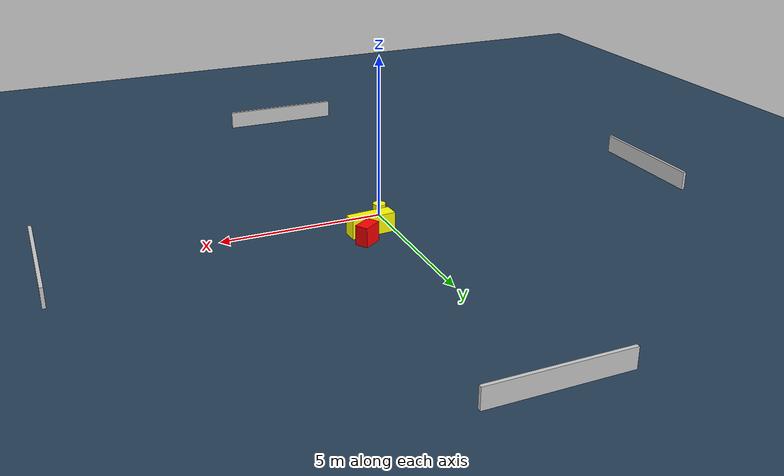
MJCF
<?xml version="1.0" ?>
<mujoco model="generated_environment">
  <option timestep="0.01" integrator="RK4" cone="elliptic"/>
  <default>
    <geom density="1"/>
  </default>
  <asset>
    <texture builtin="gradient" height="3072" name="skybox" rgb1="0.3 0.5 0.7" rgb2="0 0 0" type="skybox" width="512"/>
    <texture builtin="checker" height="300" name="groundplane" rgb1="0.2 0.3 0.4" rgb2="0.1 0.2 0.3" type="2d" width="300"/>
    <material name="groundplane" reflectance="0.2" texrepeat="5 5" texture="groundplane"/>
  </asset>
  <worldbody>
    <light dir="0 0 -1" directional="true" pos="0 0 1.5"/>
    <geom condim="3" friction="0.5 0.005 0.001" material="groundplane" name="floor" pos="0 0 0" size="0 0 0.05" type="plane"/>
    <body name="walls">
      <geom name="wall_1" condim="4" pos="-10.0 0.0 0.3" rgba="0.800000011920929 0.800000011920929 0.800000011920929 1.0" size="0.05 2.0 0.3" type="box"/>
      <geom name="wall_2" condim="4" pos="10.0 0.0 0.3" rgba="0.800000011920929 0.800000011920929 0.800000011920929 1.0" size="0.05 2.0 0.3" type="box"/>
      <geom name="wall_3" condim="4" pos="0.0 -10.0 0.3" rgba="0.800000011920929 0.800000011920929 0.800000011920929 1.0" size="2.0 0.05 0.3" type="box"/>
      <geom name="wall_4" condim="4" pos="0.0 10.0 0.3" rgba="0.800000011920929 0.800000011920929 0.800000011920929 1.0" size="2.0 0.05 0.3" type="box"/>
    </body>
    <body name="robot">
      <joint name="joint_x" type="slide" pos="0 0 0" axis="1 0 0"/>
      <joint name="joint_y" type="slide" pos="0 0 0" axis="0 1 0"/>
      <geom name="robot" type="cylinder" pos="0.0 0.0 0.2" size="0.2 0.2 0.0" mass="5.0" friction="1.0 0.005 0.0001" condim="4" rgba="1.0 1.0 0.0 1.0"/>
    </body>
    <body name="obstacle_1_movable">
      <geom name="obstacle_1_movable" condim="4" pos="0.7139577254512764 1.043041828238852 0.3" euler="0 0 93.95268738904164" friction="0.0 0.005 0.001" rgba="1.0 1.0 0.0 1.0" size="0.2296153572169719 0.6940436876182303 0.3" type="box" mass="0.1"/>
      <joint type="free"/>
    </body>
    <body name="obstacle_2_static">
      <geom name="obstacle_2_static" condim="4" pos="1.0721167775066731 1.6380653599368815 0.3" euler="0 0 212.82455548583982" friction="0.0 0.005 0.001" rgba="1.0 0.0 0.0 1.0" size="0.30707822126310047 0.20007827078271365 0.3" type="box"/>
    </body>
  </worldbody>
  <actuator>
    <motor name="actuator_x" joint="joint_x" gear="1" ctrlrange="-1 1"/>
    <motor name="actuator_y" joint="joint_y" gear="1" ctrlrange="-1 1"/>
  </actuator>
</mujoco>
